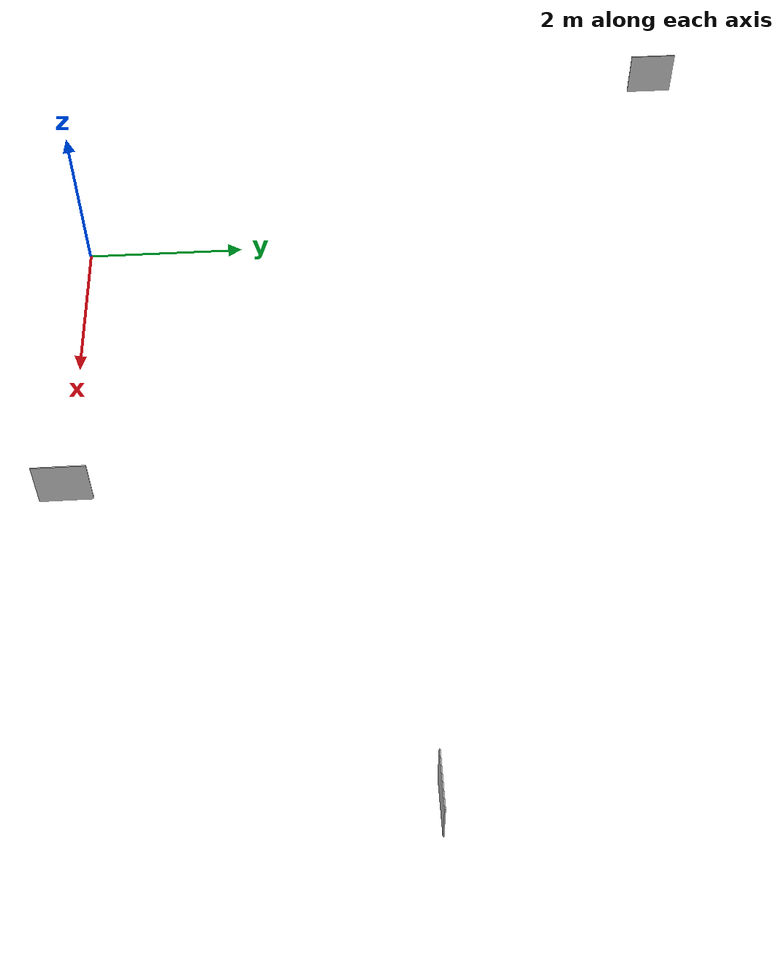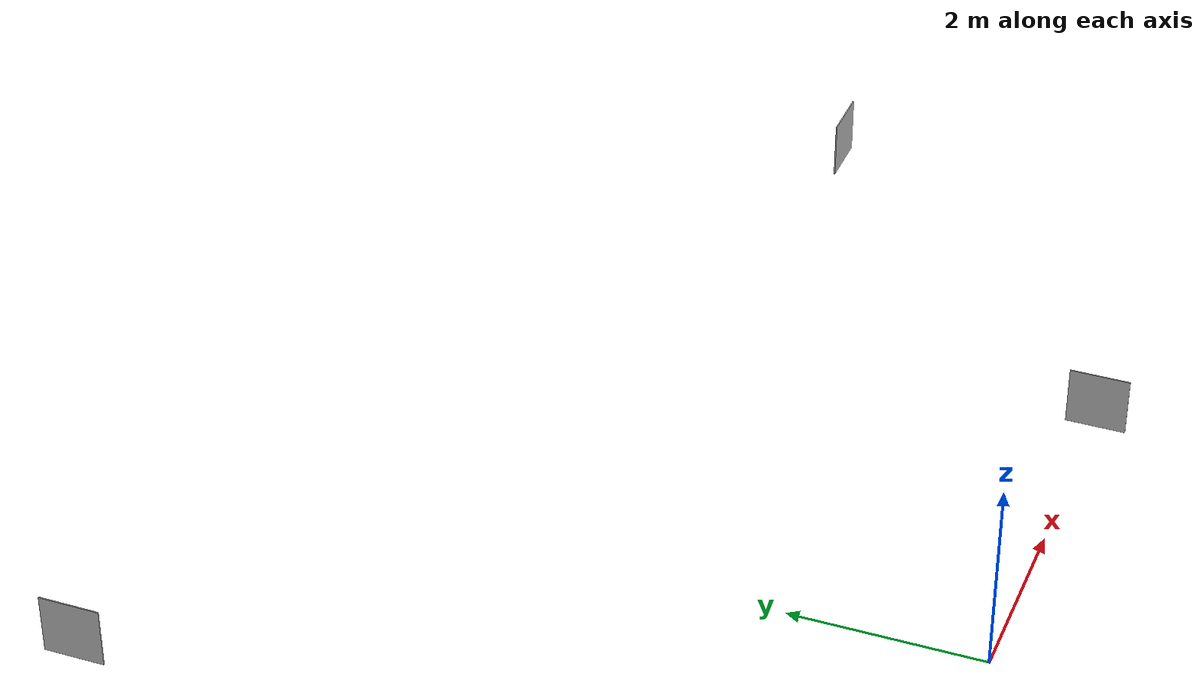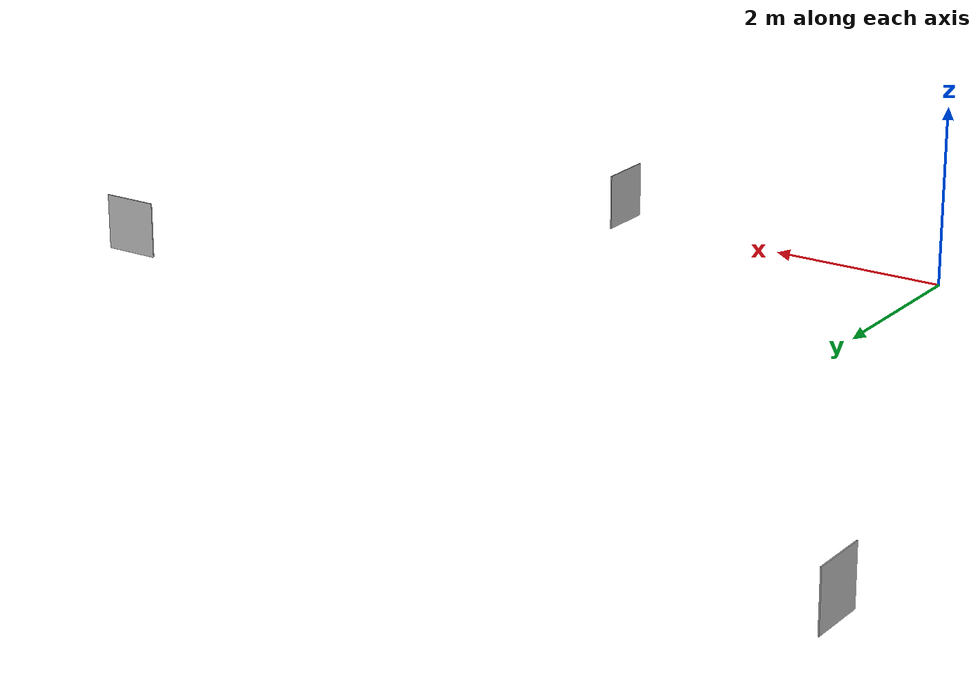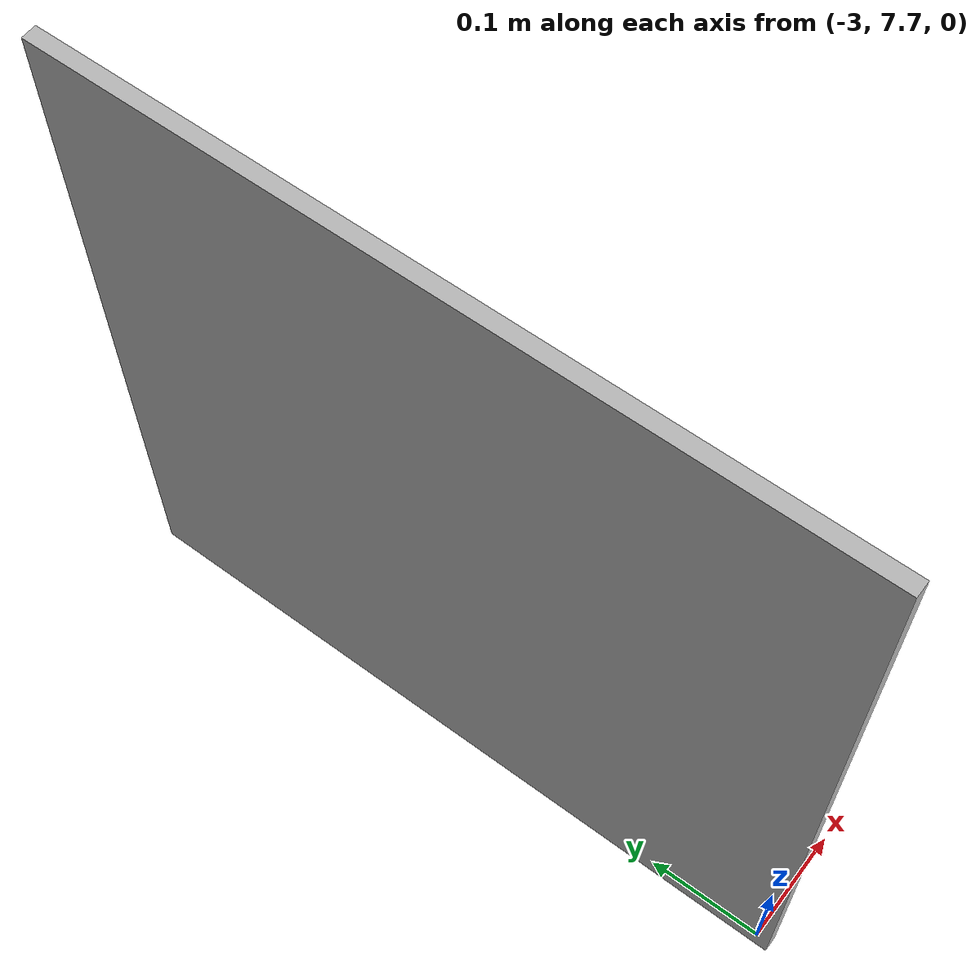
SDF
<?xml version="1.0" ?>
<sdf version="1.5">

<!-- https://github.com/uuvsimulator/uuv_simulator/wiki/Making-your-seabed-world-model -->

  <world name="perception">

<spherical_coordinates>
  <surface_model>EARTH_WGS84</surface_model>
  <world_frame_orientation>ENU</world_frame_orientation>

  <latitude_deg>38.161479</latitude_deg>
  <longitude_deg>-122.454630</longitude_deg>
  <elevation>0</elevation>
  <heading_deg>180</heading_deg>
</spherical_coordinates>

    <frame name="world">
      <!-- Définissez les coordonnées de référence, par exemple : -->
      <pose>0 0 0 0 0 0</pose>
    </frame>

    <model name='ground_plane'>
      <static>1</static>
      <link name='ground'>
        <collision name='collision'>
          <geometry>
            <plane >
              <xyz>0 0 -1</xyz>

              <normal>0 0 1</normal>
              <size>100 100</size>
            </plane>
          </geometry>
          <surface>
            <friction>
              <ode>
                <mu>100</mu>
                <mu2>50</mu2>
              </ode>
            </friction>
          </surface>
        </collision>
      </link>
    </model>

    <model name="tag36_11_00003">
    <static>true</static>
    <link name="link">
      <visual name="visual">
        <geometry>
          <mesh>
            <uri>model://tag36_11_00003/meshes/tag36_11_00003.dae</uri>
          <scale>1.25 1.25 1.25</scale>
          </mesh>
        </geometry>
      </visual>
    </link>
    <pose> 4.0 0 0 0 0 0</pose>
  </model>

  <model name="tag36_11_00005">
    <static>true</static>
    <link name="link">
      <visual name="visual">
        <geometry>
          <mesh>
            <uri>model://tag36_11_00005/meshes/tag36_11_00005.dae</uri>
          <scale>1.25 1.25 1.25</scale>
          </mesh>
        </geometry>
      </visual>
    </link>
    <pose> 8.0 4.0 0 0 0 1.57</pose>
  </model>

  <model name="tag36_11_00007">
    <static>true</static>
    <link name="link">
      <visual name="visual">
        <geometry>
          <mesh>
            <uri>model://tag36_11_00007/meshes/tag36_11_00007.dae</uri>
          <scale>1.25 1.25 1.25</scale>
          </mesh>
        </geometry>
      </visual>
    </link>
    <pose> -3.0 8 0 0 0 0</pose>
  </model>

  </world>

</sdf>
